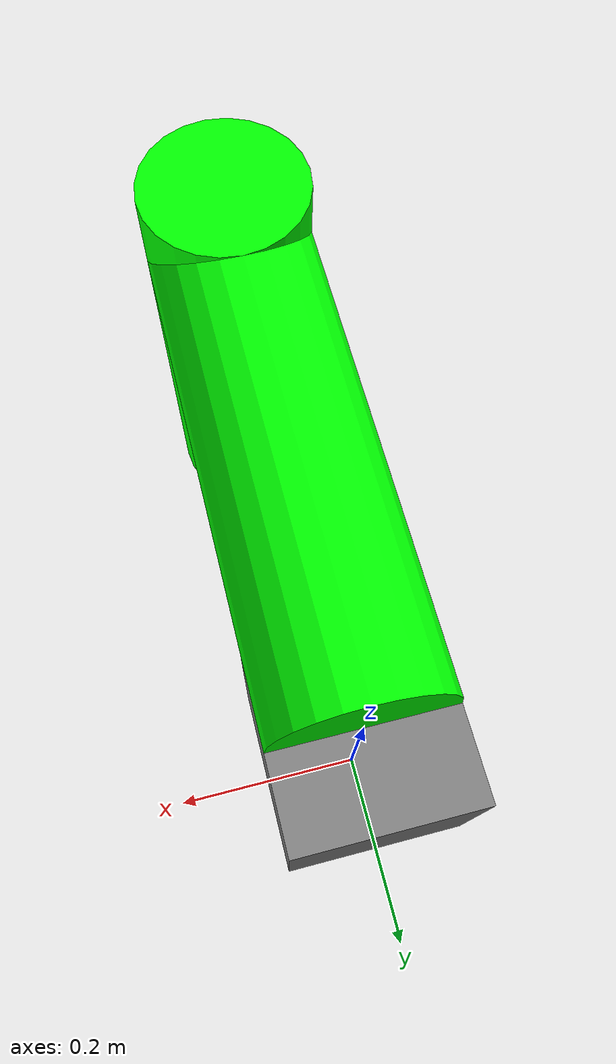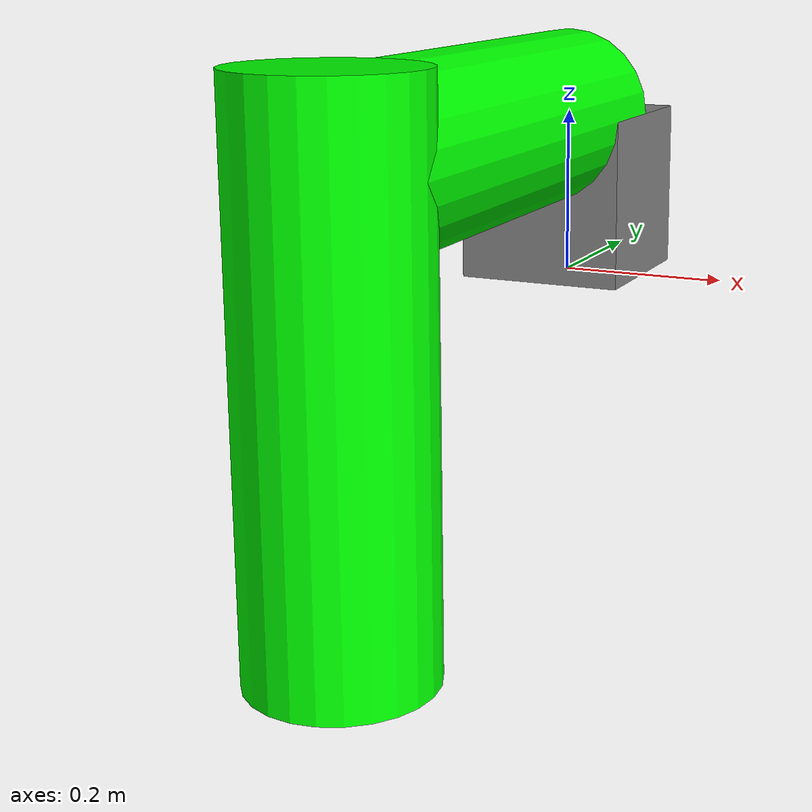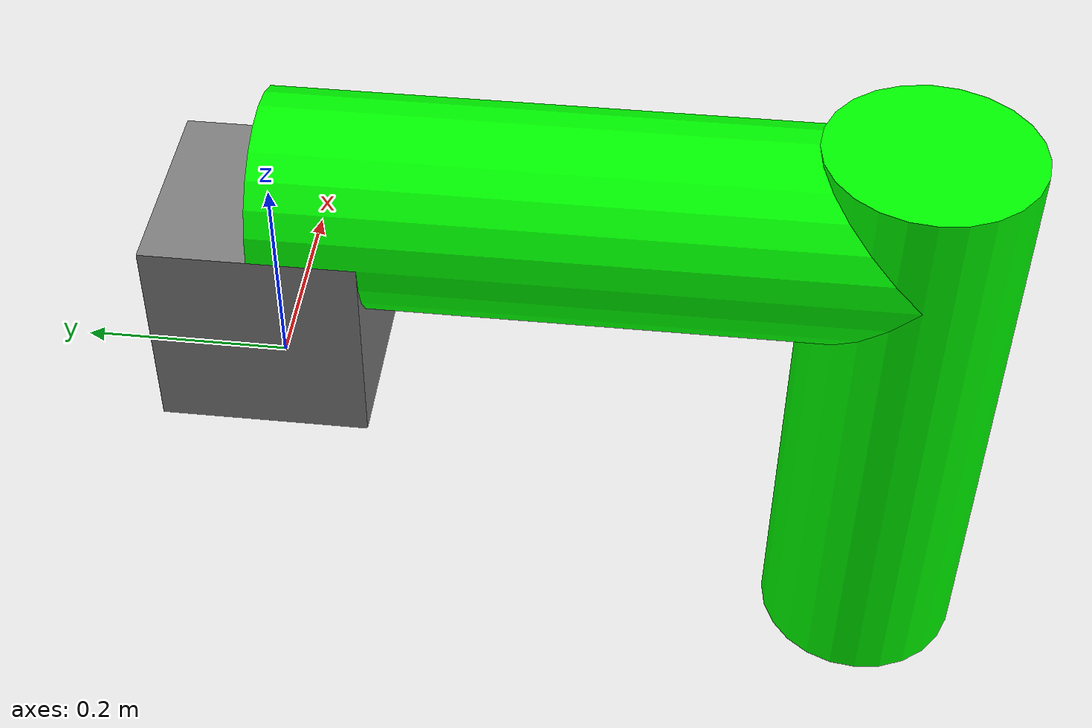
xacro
<robot name="simple_robot" xmlns:xacro="http://www.ros.org/wiki/xacro">
  <link name="world"/>
  <link name="base_link"> <!-- Each link should have a name to distinguish and refer to them -->
    <visual>
      <origin xyz="0 0 0.1" rpy="0 0 0"/><!-- !! ADD THIS to offset the position of the box's centre-->
      <geometry>
        <box size="0.2 0.2 0.2"/> <!-- This specifies the shape of the link -->
      </geometry>
      <material name="base_material"> <!-- You need to give a name to the material -->
        <color rgba="0.5 0.5 0.5 1"/> <!-- This specifies the color of the link -->
      </material>
    </visual>
  </link>

  <link name="link_1">
    <visual>
      <origin xyz="0 0 0.3" rpy="0 0 0"/> <!-- !! ADD THIS to offset the position of the cylinder's centre-->
      <geometry>
        <cylinder length="0.6" radius="0.1"/>
      </geometry>
      <material name="link1_material">
        <color rgba="0 1 0 1"/>
      </material>
    </visual>
  </link>

  <link name="link_2">
    <visual>
      <origin xyz="0 0 0.2" rpy="0 0 0"/> <!-- !! ADD THIS to offset the position of the cylinder's centre-->
      <geometry>
        <cylinder length="0.6" radius="0.1"/>
      </geometry>
      <material name="link1_material">
        <color rgba="0 1 0 2"/>
      </material>
    </visual>
  </link>

  <joint name="fixed" type="fixed"> <!-- it's a fixed frame because we do not want the base to move -->
    <parent link="world"/>    <!-- parent, because in the chain sequence comes before the child -->
    <child link="base_link"/> <!-- This is the child, connected by the joint to the parent -->
  </joint>

  <joint name="base_to_link_1" type="continuous"> <!-- Continuous, meaning it can rotate without upper/lower limits -->
    <origin xyz="0 0 0.2" rpy="${pi/2} 0 0"/> <!-- !! ADD THIS to rotate and offset the link (not its geometry) -->
    <axis xyz="0 1 0"/> <!-- !! ADD THIS for setting the axis of rotation. By default rotation is on the x axis-->
    <parent link="base_link"/>
    <child link="link_1"/>
  </joint>

  <joint name="link_1_to_link_2" type="continuous"> <!-- Continuous, meaning it can rotate without upper/lower limits -->
    <origin xyz="0 0 0.6" rpy="${pi/2} 0 0"/> <!-- !! ADD THIS to rotate and offset the link (not its geometry) -->
    <axis xyz="1 0 0"/> <!-- !! ADD THIS for setting the axis of rotation. By default rotation is on the x axis-->
    <parent link="link_1"/>
    <child link="link_2"/>
  </joint>
</robot>
